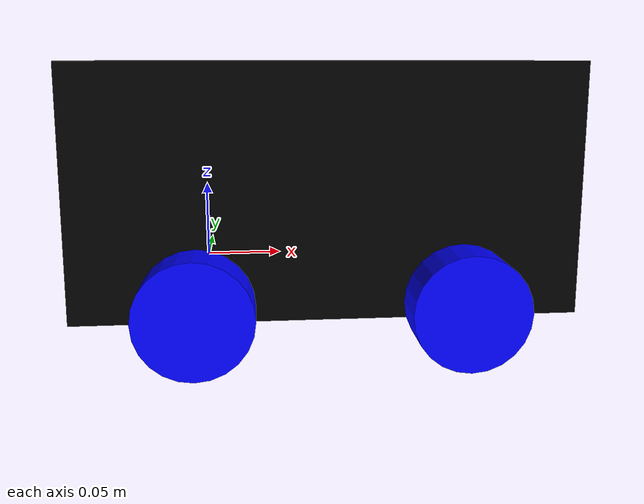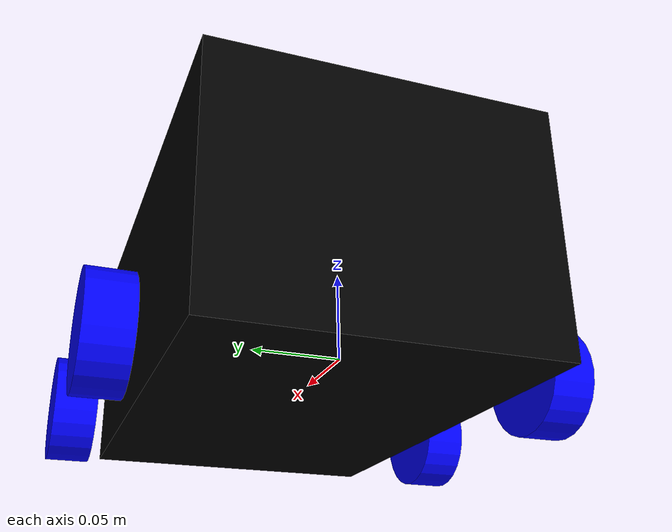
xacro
<?xml version="1.0"?>
<robot xmlns:xacro="http://www.ros.org/wiki/xacro">

    <xacro:include filename="inertial_macros.xacro"/>

    <material name="black">
        <color rgba="0 0 0 1"/>
    </material>

    <material name="yellow">
        <color rgba="1 1 0 1"/>
    </material>

    <material name="gray">
        <color rgba="0.5 0.5 0.5 1"/>
    </material>

    <material name="blue">
        <color rgba="0 0 1 1"/>
    </material>

    <material name="olive">
        <color rgba="0.5 0.5 0 1"/>
    </material>

    <material name="red">
        <color rgba="1 0 0 1"/>
    </material>

     <!-- Constants for robot dimensions -->
    <xacro:property name="chassis_mass" value="1.0"/>
    <xacro:property name="chassis_length" value="0.3"/>
    <xacro:property name="chassis_width" value="0.2"/>
    <xacro:property name="chassis_height" value="0.15"/>
    <xacro:property name="wheel_radius" value="0.033"/>
    <xacro:property name="wheel_thickness" value="0.026"/>
    <xacro:property name="wheel_mass" value="0.05"/>
    <xacro:property name="wheel_offset_x" value="0.075"/>
    <xacro:property name="wheel_offset_y" value="0.1285"/>
    <xacro:property name="wheel_offset_z" value="0.015"/>

    <!-- base_link -->
    <link name="base_link">
    </link>

     <!-- BASE_FOOTPRINT LINK -->

    <joint name="base_footprint_joint" type="fixed">
        <parent link="base_link"/>
        <child link="base_footprint"/>
        <origin xyz="0 0 0" rpy="0 0 0"/>
    </joint>

    <link name="base_footprint">
    </link>

    <!-- chassis -->
    <joint name="chassis_joint" type="fixed">
        <parent link="base_link"/>
        <child link="chassis_link"/>
        <origin xyz="${-wheel_offset_x} 0 ${-wheel_offset_z}"/>
    </joint>

    <link name="chassis_link">
        <visual>
            <origin xyz="${chassis_length/2} 0 ${chassis_height/2}"/>
            <geometry>
                <box size="${chassis_length} ${chassis_width} ${chassis_height}"/>
            </geometry>
            <material name="black"/>
        </visual>
        <collision>
            <origin xyz="${chassis_length/2} 0 ${chassis_height/2}"/>
            <geometry>
                <box size="${chassis_length} ${chassis_width} ${chassis_height}"/>
            </geometry>
        </collision>
        <xacro:inertial_box mass="0.5" x="${chassis_length}" y="${chassis_width}" z="${chassis_height}">
            <origin xyz="${chassis_length/2} 0 ${chassis_height/2}" rpy="0 0 0"/>
        </xacro:inertial_box>
    </link>

    <gazebo reference="chassis_link">
        <material>Gazebo/Black</material>
    </gazebo>

    <!--Macro Wheel-->
    <xacro:macro name="wheel_link" params="prefix place">
        <link name="${prefix}_wheel_${place}_link">
            <visual>
                <geometry>
                    <cylinder radius="${wheel_radius}" length="${wheel_thickness}"/>
                </geometry>
                <material name="blue"/>
            </visual>
            <collision>
                <geometry>
                    <sphere radius="${wheel_radius}"/>
                </geometry>
            </collision>
            <xacro:inertial_cylinder mass="${wheel_mass}" length="${wheel_thickness}" radius="${wheel_radius}">
                <origin xyz="0 0 0" rpy="0 0 0"/>
            </xacro:inertial_cylinder>
        </link>

        <gazebo reference="${prefix}_wheel_${place}_link">
            <material>Gazebo/Yellow</material>
        </gazebo>
    </xacro:macro>

    <!--Left Wheel Front-->
   <joint name="left_wheel_front_joint" type="fixed">
        <parent link="base_link" />
        <child link="left_wheel_front_link" />
        <origin xyz="0.15 ${wheel_offset_y} 0" rpy="-${pi/2} 0 0" />
        <axis xyz="0 0 1" />
    </joint>

    <xacro:wheel_link prefix="left" place="front" />

    <gazebo reference="left_wheel_front_link">
            <mu1 value="0.001"/>
            <mu2 value="0.001"/>
    </gazebo>

    <!--Left Wheel back-->
    <joint name="left_wheel_back_joint" type="continuous">
        <parent link="base_link" />
        <child link="left_wheel_back_link" />
        <origin xyz="0 ${wheel_offset_y} 0" rpy="-${pi/2} 0 0" />
        <axis xyz="0 0 1"/>
    </joint>

    <xacro:wheel_link prefix="left" place="back" />

    <!--Right Wheel Front-->
    <joint name="right_wheel_front_joint" type="fixed">
        <parent link="base_link" />
        <child link="right_wheel_front_link" />
        <origin xyz="0.15 ${-wheel_offset_y}  0" rpy="${pi/2} 0 0" />
        <axis xyz="0 0 -1" />
    </joint>

    <xacro:wheel_link prefix="right" place="front" />

    <gazebo reference="right_wheel_front_link">
            <mu1 value="0.001"/>
            <mu2 value="0.001"/>
    </gazebo>

     <!--right Wheel Back-->
    <joint name="right_wheel_back_joint" type="continuous">
        <parent link="base_link" />
        <child link="right_wheel_back_link" />
        <origin xyz="0 ${-wheel_offset_y} 0" rpy="${pi/2} 0 0" />
        <axis xyz="0 0 -1"/>
    </joint>

    <xacro:wheel_link prefix="right" place="back" />

</robot>
